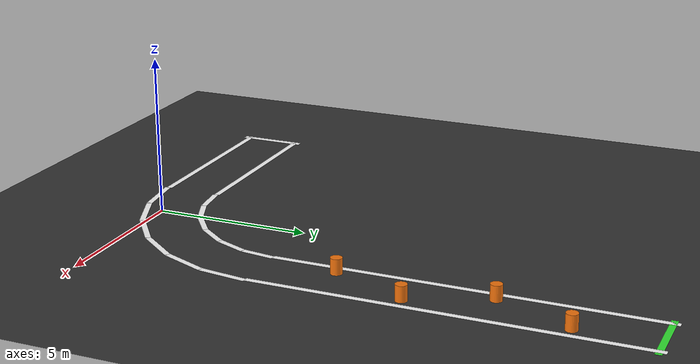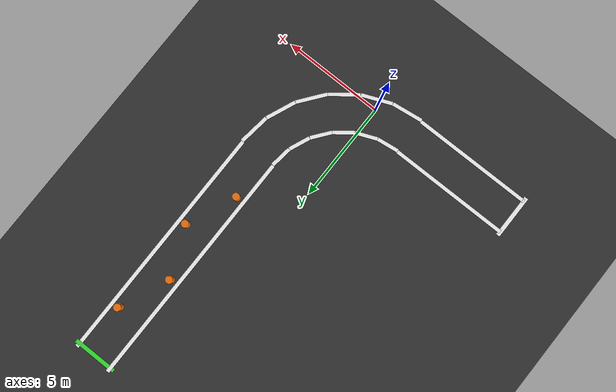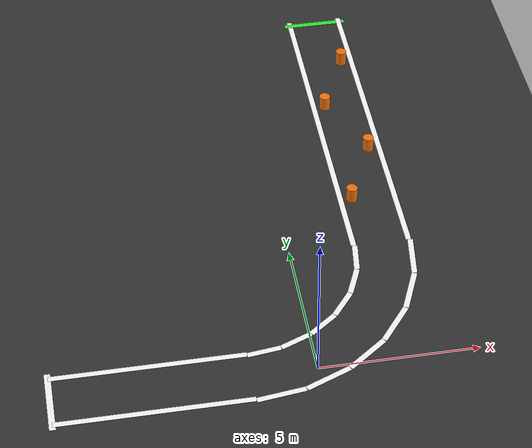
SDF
<?xml version="1.0" ?>
<sdf version='1.7'>
  <world name='lane_curve_obstacles'>
    <light name='sun' type='directional'>
      <cast_shadows>1</cast_shadows>
      <pose>0 0 10 0 -0 0</pose>
      <diffuse>0.8 0.8 0.8 1</diffuse>
      <specular>0.2 0.2 0.2 1</specular>
      <attenuation>
        <range>1000</range>
        <constant>0.9</constant>
        <linear>0.01</linear>
        <quadratic>0.001</quadratic>
      </attenuation>
      <direction>-0.35 0.1 -0.93</direction>
    </light>

    <gravity>0 0 -9.8</gravity>
    <magnetic_field>6e-06 2.3e-05 -4.2e-05</magnetic_field>
    <atmosphere type='adiabatic'/>
    <physics type='ode'>
      <max_step_size>0.001</max_step_size>
      <real_time_factor>1</real_time_factor>
      <real_time_update_rate>1000</real_time_update_rate>
    </physics>

    <scene>
      <ambient>0.45 0.45 0.45 1</ambient>
      <background>0.82 0.86 0.9 1</background>
      <shadows>1</shadows>
    </scene>

    <audio>
      <device>default</device>
    </audio>

    <wind/>

    <spherical_coordinates>
      <surface_model>EARTH_WGS84</surface_model>
      <latitude_deg>40.8069</latitude_deg>
      <longitude_deg>29.3579</longitude_deg>
      <elevation>0</elevation>
      <heading_deg>0</heading_deg>
    </spherical_coordinates>

    <model name='ground_plane'>
      <static>1</static>
      <link name='link'>
        <collision name='collision'>
          <geometry>
            <plane>
              <normal>0 0 1</normal>
              <size>80 80</size>
            </plane>
          </geometry>
        </collision>
        <visual name='visual'>
          <cast_shadows>0</cast_shadows>
          <geometry>
            <plane>
              <normal>0 0 1</normal>
              <size>80 80</size>
            </plane>
          </geometry>
          <material>
            <ambient>0.18 0.18 0.18 1</ambient>
            <diffuse>0.2 0.2 0.2 1</diffuse>
            <specular>0.02 0.02 0.02 1</specular>
          </material>
        </visual>
      </link>
    </model>

    <model name='lane_markings_curve'>
      <static>1</static>
      <link name='lane_lines'>
        <visual name='left_straight_in'>
          <pose>-5.0 0.9 0.006 0 0 0.0</pose>
          <geometry>
            <box>
              <size>6.0 0.18 0.01</size>
            </box>
          </geometry>
          <material>
            <ambient>0.98 0.98 0.98 1</ambient>
            <diffuse>0.98 0.98 0.98 1</diffuse>
          </material>
        </visual>
        <visual name='right_straight_in'>
          <pose>-5.0 -0.9 0.006 0 0 0.0</pose>
          <geometry>
            <box>
              <size>6.0 0.18 0.01</size>
            </box>
          </geometry>
          <material>
            <ambient>0.98 0.98 0.98 1</ambient>
            <diffuse>0.98 0.98 0.98 1</diffuse>
          </material>
        </visual>

        <visual name='left_arc_1'><pose>-1.465 0.935 0.006 0 0 0.131</pose><geometry><box><size>1.073 0.18 0.01</size></box></geometry><material><ambient>0.98 0.98 0.98 1</ambient><diffuse>0.98 0.98 0.98 1</diffuse></material></visual>
        <visual name='left_arc_2'><pose>-0.431 1.212 0.006 0 0 0.393</pose><geometry><box><size>1.073 0.18 0.01</size></box></geometry><material><ambient>0.98 0.98 0.98 1</ambient><diffuse>0.98 0.98 0.98 1</diffuse></material></visual>
        <visual name='left_arc_3'><pose>0.496 1.747 0.006 0 0 0.654</pose><geometry><box><size>1.073 0.18 0.01</size></box></geometry><material><ambient>0.98 0.98 0.98 1</ambient><diffuse>0.98 0.98 0.98 1</diffuse></material></visual>
        <visual name='left_arc_4'><pose>1.253 2.504 0.006 0 0 0.916</pose><geometry><box><size>1.073 0.18 0.01</size></box></geometry><material><ambient>0.98 0.98 0.98 1</ambient><diffuse>0.98 0.98 0.98 1</diffuse></material></visual>
        <visual name='left_arc_5'><pose>1.788 3.431 0.006 0 0 1.178</pose><geometry><box><size>1.073 0.18 0.01</size></box></geometry><material><ambient>0.98 0.98 0.98 1</ambient><diffuse>0.98 0.98 0.98 1</diffuse></material></visual>
        <visual name='left_arc_6'><pose>2.065 4.465 0.006 0 0 1.440</pose><geometry><box><size>1.073 0.18 0.01</size></box></geometry><material><ambient>0.98 0.98 0.98 1</ambient><diffuse>0.98 0.98 0.98 1</diffuse></material></visual>

        <visual name='right_arc_1'><pose>-1.230 -0.850 0.006 0 0 0.131</pose><geometry><box><size>1.545 0.18 0.01</size></box></geometry><material><ambient>0.98 0.98 0.98 1</ambient><diffuse>0.98 0.98 0.98 1</diffuse></material></visual>
        <visual name='right_arc_2'><pose>0.258 -0.451 0.006 0 0 0.393</pose><geometry><box><size>1.545 0.18 0.01</size></box></geometry><material><ambient>0.98 0.98 0.98 1</ambient><diffuse>0.98 0.98 0.98 1</diffuse></material></visual>
        <visual name='right_arc_3'><pose>1.592 0.319 0.006 0 0 0.654</pose><geometry><box><size>1.545 0.18 0.01</size></box></geometry><material><ambient>0.98 0.98 0.98 1</ambient><diffuse>0.98 0.98 0.98 1</diffuse></material></visual>
        <visual name='right_arc_4'><pose>2.681 1.408 0.006 0 0 0.916</pose><geometry><box><size>1.545 0.18 0.01</size></box></geometry><material><ambient>0.98 0.98 0.98 1</ambient><diffuse>0.98 0.98 0.98 1</diffuse></material></visual>
        <visual name='right_arc_5'><pose>3.451 2.742 0.006 0 0 1.178</pose><geometry><box><size>1.545 0.18 0.01</size></box></geometry><material><ambient>0.98 0.98 0.98 1</ambient><diffuse>0.98 0.98 0.98 1</diffuse></material></visual>
        <visual name='right_arc_6'><pose>3.850 4.230 0.006 0 0 1.440</pose><geometry><box><size>1.545 0.18 0.01</size></box></geometry><material><ambient>0.98 0.98 0.98 1</ambient><diffuse>0.98 0.98 0.98 1</diffuse></material></visual>

        <visual name='left_straight_out'>
          <pose>2.1 11.0 0.006 0 0 1.571</pose>
          <geometry><box><size>12.0 0.18 0.01</size></box></geometry>
          <material><ambient>0.98 0.98 0.98 1</ambient><diffuse>0.98 0.98 0.98 1</diffuse></material>
        </visual>
        <visual name='right_straight_out'>
          <pose>3.9 11.0 0.006 0 0 1.571</pose>
          <geometry><box><size>12.0 0.18 0.01</size></box></geometry>
          <material><ambient>0.98 0.98 0.98 1</ambient><diffuse>0.98 0.98 0.98 1</diffuse></material>
        </visual>

        <visual name='start_line'>
          <pose>-8.0 0.0 0.006 0 0 0.0</pose>
          <geometry><box><size>0.2 2.2 0.01</size></box></geometry>
          <material><ambient>0.98 0.98 0.98 1</ambient><diffuse>0.98 0.98 0.98 1</diffuse></material>
        </visual>
        <visual name='finish_line'>
          <pose>3.0 16.8 0.006 0 0 1.571</pose>
          <geometry><box><size>0.2 2.2 0.01</size></box></geometry>
          <material><ambient>0.2 0.9 0.2 1</ambient><diffuse>0.2 0.9 0.2 1</diffuse></material>
        </visual>
      </link>
    </model>

    <model name='barrel_1_left'>
      <static>1</static>
      <pose>2.48 7.20 0.25 0 0 0</pose>
      <link name='link'>
        <collision name='collision'>
          <geometry><cylinder><radius>0.18</radius><length>0.50</length></cylinder></geometry>
        </collision>
        <visual name='visual'>
          <geometry><cylinder><radius>0.18</radius><length>0.50</length></cylinder></geometry>
          <material><ambient>0.95 0.45 0.05 1</ambient><diffuse>0.95 0.45 0.05 1</diffuse><specular>0.1 0.1 0.1 1</specular></material>
        </visual>
      </link>
    </model>

    <model name='barrel_2_right'>
      <static>1</static>
      <pose>3.52 9.60 0.25 0 0 0</pose>
      <link name='link'>
        <collision name='collision'>
          <geometry><cylinder><radius>0.18</radius><length>0.50</length></cylinder></geometry>
        </collision>
        <visual name='visual'>
          <geometry><cylinder><radius>0.18</radius><length>0.50</length></cylinder></geometry>
          <material><ambient>0.95 0.45 0.05 1</ambient><diffuse>0.95 0.45 0.05 1</diffuse><specular>0.1 0.1 0.1 1</specular></material>
        </visual>
      </link>
    </model>

    <model name='barrel_3_left'>
      <static>1</static>
      <pose>2.48 12.00 0.25 0 0 0</pose>
      <link name='link'>
        <collision name='collision'>
          <geometry><cylinder><radius>0.18</radius><length>0.50</length></cylinder></geometry>
        </collision>
        <visual name='visual'>
          <geometry><cylinder><radius>0.18</radius><length>0.50</length></cylinder></geometry>
          <material><ambient>0.95 0.45 0.05 1</ambient><diffuse>0.95 0.45 0.05 1</diffuse><specular>0.1 0.1 0.1 1</specular></material>
        </visual>
      </link>
    </model>

    <model name='barrel_4_right'>
      <static>1</static>
      <pose>3.52 14.40 0.25 0 0 0</pose>
      <link name='link'>
        <collision name='collision'>
          <geometry><cylinder><radius>0.18</radius><length>0.50</length></cylinder></geometry>
        </collision>
        <visual name='visual'>
          <geometry><cylinder><radius>0.18</radius><length>0.50</length></cylinder></geometry>
          <material><ambient>0.95 0.45 0.05 1</ambient><diffuse>0.95 0.45 0.05 1</diffuse><specular>0.1 0.1 0.1 1</specular></material>
        </visual>
      </link>
    </model>

    <gui fullscreen='0'>
      <camera name='user_camera'>
        <pose>-2.0 -12.5 12.0 0 0.72 1.20</pose>
        <view_controller>orbit</view_controller>
        <projection_type>perspective</projection_type>
      </camera>
    </gui>
  </world>
</sdf>
